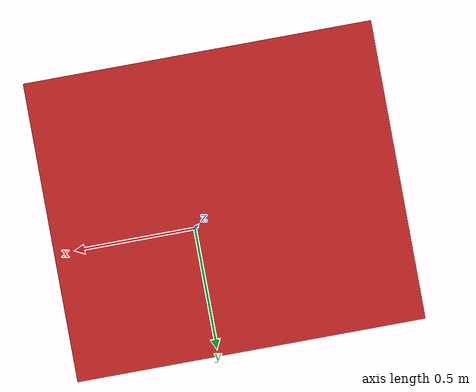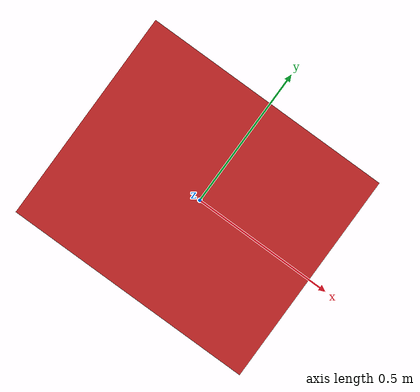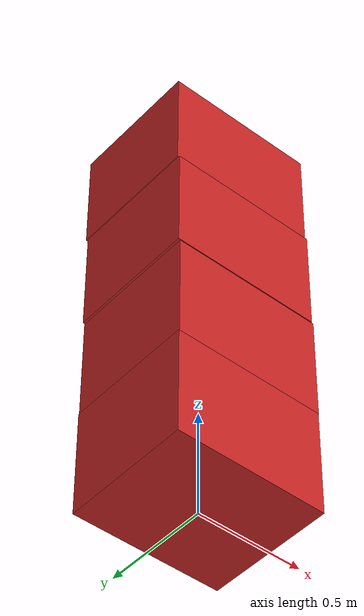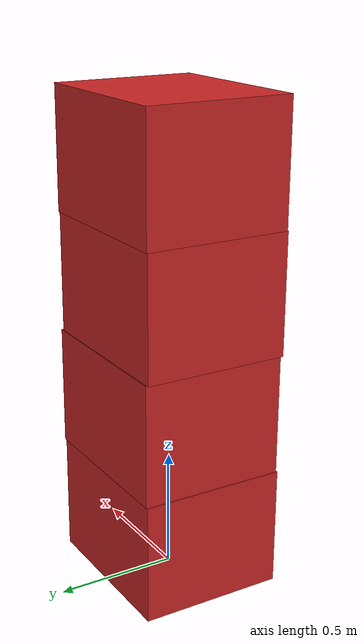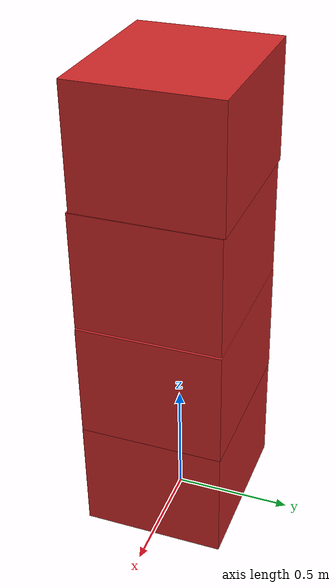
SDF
<?xml version="1.0" encoding="UTF-8"?>
<sdf version='1.4'>
    <model name="baggage_A_x4">
        <model name="baggage_A_0">
            <static>true</static>
            <link name="link">
                <collision name="collision">
                    <geometry>
                    <box>
                        <size>0.7 0.6 0.5</size>
                    </box>
                    </geometry>
                </collision>
                <visual name="visual">
                    <geometry>
                    <box>
                        <size>0.7 0.6 0.5</size>
                    </box>
                    </geometry>
                    <material>
                    <script>
                        <uri>file://media/materials/scripts/gazebo.material</uri>
                        <name>Gazebo/Red</name>
                    </script>
                    </material>
                </visual>
            </link>
            <pose frame=''>0 0 0.25 0 0 0</pose>
        </model>
        <model name="baggage_A_1">
            <static>true</static>
            <link name="link">
                <collision name="collision">
                    <geometry>
                    <box>
                        <size>0.7 0.6 0.5</size>
                    </box>
                    </geometry>
                </collision>
                <visual name="visual">
                    <geometry>
                    <box>
                        <size>0.7 0.6 0.5</size>
                    </box>
                    </geometry>
                    <material>
                    <script>
                        <uri>file://media/materials/scripts/gazebo.material</uri>
                        <name>Gazebo/Red</name>
                    </script>
                    </material>
                </visual>
            </link>
            <pose frame=''>0.0053 0.0033 0.75 0 0 0</pose>
        </model>
        <model name="baggage_A_2">
            <static>true</static>
            <link name="link">
                <collision name="collision">
                    <geometry>
                    <box>
                        <size>0.7 0.6 0.5</size>
                    </box>
                    </geometry>
                </collision>
                <visual name="visual">
                    <geometry>
                    <box>
                        <size>0.7 0.6 0.5</size>
                    </box>
                    </geometry>
                    <material>
                    <script>
                        <uri>file://media/materials/scripts/gazebo.material</uri>
                        <name>Gazebo/Red</name>
                    </script>
                    </material>
                </visual>
            </link>
            <pose frame=''>-0.0056 -0.0003 1.25 0 0 0</pose>
        </model>
        <model name="baggage_A_3">
            <static>true</static>
            <link name="link">
                <collision name="collision">
                    <geometry>
                    <box>
                        <size>0.7 0.6 0.5</size>
                    </box>
                    </geometry>
                </collision>
                <visual name="visual">
                    <geometry>
                    <box>
                        <size>0.7 0.6 0.5</size>
                    </box>
                    </geometry>
                    <material>
                    <script>
                        <uri>file://media/materials/scripts/gazebo.material</uri>
                        <name>Gazebo/Red</name>
                    </script>
                    </material>
                </visual>
            </link>
            <pose frame=''>-0.0098 0.0065 1.75 0 0 0</pose>
        </model>
    </model>
</sdf>
